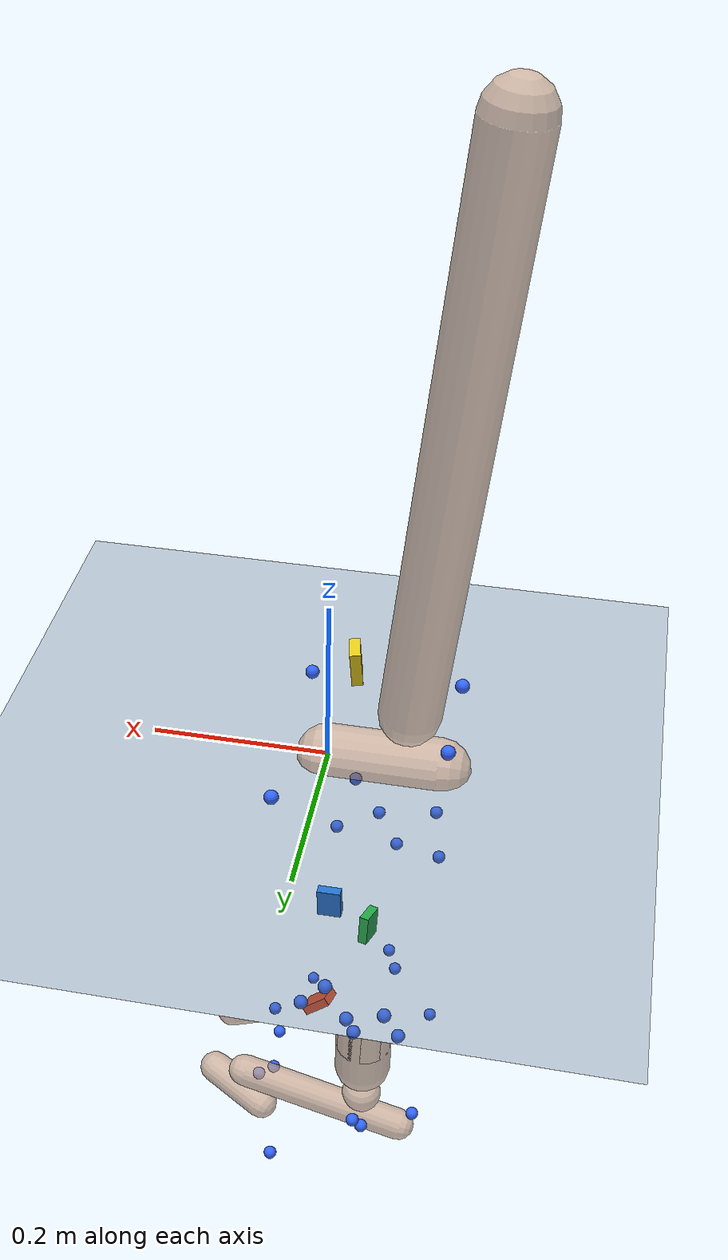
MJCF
<mujoco model="AB13">
  <compiler angle="radian" autolimits="true"/>
  <option timestep="0.005" gravity="0 0 -9.81"><flag contact="disable"/></option>
  <visual><global offwidth="1280" offheight="720"/></visual>
  <default><joint limited="false" damping="0"/><geom contype="0" conaffinity="0"/></default>
  <asset>
    <texture name="grid" type="2d" builtin="checker" rgb1="0.2 0.3 0.4" rgb2="0.3 0.4 0.5" width="512" height="512"/>
    <material name="grid" texture="grid" texrepeat="2 2" texuniform="true"/>
    <material name="skin" rgba="0.8 0.65 0.55 0.7"/>
  </asset>
  <worldbody>
    <light pos="0 0 4" dir="0 0 -1"/>
    <geom name="floor" type="plane" size="0 0 0.05" material="grid"/>
    <body name="pelvis" pos="0 0 0" quat="1 0 0 0">
      <joint name="pelvis_tx" type="slide" axis="1 0 0"/>
      <joint name="pelvis_ty" type="slide" axis="0 0 1"/>
      <joint name="pelvis_tz" type="slide" axis="0 -1 0"/>
      <joint name="pelvis_tilt" type="hinge" axis="0 -1 0"/>
      <joint name="pelvis_list" type="hinge" axis="1 0 0"/>
      <joint name="pelvis_rotation" type="hinge" axis="0 0 1"/>
      <inertial pos="-0.063103539 0 0" mass="8.94477" diaginertia="0.089447731 0.089447731 0.089447731"/>
      <geom type="capsule" fromto="0 0 0 -0.12620708 0 0" size="0.035" material="skin" mass="0"/>
      <site name="m_R_ASIS" pos="0.039352772 -0.1105126 0.024330353" size="0.008" rgba="0.2 0.4 1 1" group="2"/>
      <site name="m_L_ASIS" pos="0.039034642 0.11411929 0.031244651" size="0.008" rgba="0.2 0.4 1 1" group="2"/>
      <site name="m_L_PSIS" pos="-0.13862256 0.05601487 0.07470009" size="0.008" rgba="0.2 0.4 1 1" group="2"/>
      <site name="m_R_PSIS" pos="-0.1399088 -0.054829012 0.075996452" size="0.008" rgba="0.2 0.4 1 1" group="2"/>
      <body name="femur_r" pos="-0.063103539 -0.074528224 -0.058997792" quat="1 0 0 0">
        <joint name="hip_flexion_r" type="hinge" axis="0 -1 0"/>
        <joint name="hip_adduction_r" type="hinge" axis="1 0 0"/>
        <joint name="hip_rotation_r" type="hinge" axis="0 0 1"/>
        <inertial pos="0 0 -0.17254222" mass="7.06453" diaginertia="0.070645251 0.070645251 0.070645251"/>
        <geom type="capsule" fromto="0 0 0 0 0 -0.34508443" size="0.035" material="skin" mass="0"/>
        <site name="m_R_Thigh_Upper" pos="0.056050089 -0.087431832 -0.12410132" size="0.008" rgba="0.2 0.4 1 1" group="2"/>
        <site name="m_R_Thigh_Front" pos="0.075307148 -0.064751227 -0.19057419" size="0.008" rgba="0.2 0.4 1 1" group="2"/>
        <site name="m_R_Thigh_Rear" pos="0.02474407 -0.092379118 -0.18217937" size="0.008" rgba="0.2 0.4 1 1" group="2"/>
        <site name="m_R_Knee_Lat" pos="0.000352359 -0.074967183 -0.42578159" size="0.008" rgba="0.2 0.4 1 1" group="2"/>
        <site name="imu_thigh" type="box" size="0.02 0.015 0.006" pos="0.066880103 0.027863896 -0.23243883" quat="0.51276176 0.50686498 -0.50157076 0.47811091" rgba="0.1 0.5 1 1" group="1"/>
        <body name="tibia_r" pos="0 0 0" quat="1 0 0 0">
          <joint name="knee_r_translation1" type="slide" axis="1 0 0"/>
          <joint name="knee_r_translation2" type="slide" axis="0 0 1"/>
          <joint name="knee_angle_r" type="hinge" axis="0 -1 0"/>
          <inertial pos="0 0 -0.1952618" mass="2.81589" diaginertia="0.028158908 0.028158908 0.028158908"/>
          <geom type="capsule" fromto="0 0 0 0 0 -0.39052359" size="0.035" material="skin" mass="0"/>
          <site name="m_R_Shank_Upper" pos="-0.049004611 -0.093072431 -0.16876278" size="0.008" rgba="0.2 0.4 1 1" group="2"/>
          <site name="m_R_Shank_Front" pos="-0.00089466071 -0.084805157 -0.22680498" size="0.008" rgba="0.2 0.4 1 1" group="2"/>
          <site name="m_R_Shank_Rear" pos="-0.058529922 -0.070479426 -0.22546314" size="0.008" rgba="0.2 0.4 1 1" group="2"/>
          <site name="m_R_Ankle_Lat" pos="-0.011698413 -0.052401136 -0.43580038" size="0.008" rgba="0.2 0.4 1 1" group="2"/>
          <site name="imu_shank" type="box" size="0.02 0.015 0.006" pos="0.020114992 0.004899536 -0.29101144" quat="0.6954382 0.16129906 0.69910836 -0.039947704" rgba="0.1 0.8 0.2 1" group="1"/>
          <body name="talus_r" pos="0 0 -0.44971919" quat="1 0 0 0">
            <joint name="ankle_angle_r" type="hinge" axis="-0.10501355 -0.97912632 -0.17402245"/>
            <inertial pos="0 0 0" mass="0.0759512" diaginertia="0.00075951202 0.00075951202 0.00075951202"/>
            <geom type="sphere" size="0.025" material="skin" mass="0"/>
            <body name="calcn_r" pos="-0.051006523 -0.0082832 -0.043873767" quat="1 0 0 0">
              <joint name="subtalar_angle_r" type="hinge" axis="0.78717961 0.12094949 0.60474746"/>
              <inertial pos="0.10182156 0 0.030546467" mass="0.94939" diaginertia="0.0094939003 0.0094939003 0.0094939003"/>
              <geom type="capsule" fromto="0 0 0 0.20364312 0 0.061092935" size="0.02" material="skin" mass="0"/>
              <site name="m_R_Heel" pos="-0.017076583 0.0017945102 0.028101511" size="0.008" rgba="0.2 0.4 1 1" group="2"/>
              <site name="m_R_Toe_Lat" pos="0.15747793 -0.062856129 -0.011647716" size="0.008" rgba="0.2 0.4 1 1" group="2"/>
              <site name="m_R_Toe_Med" pos="0.18189576 0.052573952 0.0043415588" size="0.008" rgba="0.2 0.4 1 1" group="2"/>
              <site name="m_R_Toe_Tip" pos="0.19326144 0.028310197 0.021770381" size="0.008" rgba="0.2 0.4 1 1" group="2"/>
              <site name="imu_foot" type="box" size="0.02 0.015 0.006" pos="0.13573696 0.0063277246 0.02543629" quat="0.92752423 0.14798335 0.34130744 -0.036179522" rgba="1 0.3 0.1 1" group="1"/>
              <body name="toes_r" pos="0.18205695 -0.0010996728 -0.0020364312" quat="1 0 0 0">
                <joint name="mtp_angle_r" type="hinge" axis="-0.5809544 -0.81393611 0"/>
                <inertial pos="0.035230259 0.017818773 0.0061092935" mass="0.16451" diaginertia="0.001645103 0.001645103 0.001645103"/>
                <geom type="capsule" fromto="0 0 0 0.070460518 0.035637545 0.012218587" size="0.02" material="skin" mass="0"/>
              </body>
            </body>
          </body>
        </body>
      </body>
      <body name="femur_l" pos="-0.063103539 0.074528224 -0.058997792" quat="1 0 0 0">
        <joint name="hip_flexion_l" type="hinge" axis="0 -1 0"/>
        <joint name="hip_adduction_l" type="hinge" axis="-1 0 0"/>
        <joint name="hip_rotation_l" type="hinge" axis="0 0 -1"/>
        <inertial pos="0 0 -0.17254222" mass="7.06453" diaginertia="0.070645251 0.070645251 0.070645251"/>
        <geom type="capsule" fromto="0 0 0 0 0 -0.34508443" size="0.035" material="skin" mass="0"/>
        <site name="m_L_Thigh_Upper" pos="0.031527582 0.097124482 -0.13334903" size="0.008" rgba="0.2 0.4 1 1" group="2"/>
        <site name="m_L_Thigh_Front" pos="0.063508 0.076154799 -0.19309016" size="0.008" rgba="0.2 0.4 1 1" group="2"/>
        <site name="m_L_Thigh_Rear" pos="0.0073502552 0.092837141 -0.18935716" size="0.008" rgba="0.2 0.4 1 1" group="2"/>
        <site name="m_L_Knee_Lat" pos="0.00094312557 0.064367779 -0.42075209" size="0.008" rgba="0.2 0.4 1 1" group="2"/>
        <body name="tibia_l" pos="0 0 0" quat="1 0 0 0">
          <joint name="knee_l_translation1" type="slide" axis="1 0 0"/>
          <joint name="knee_l_translation2" type="slide" axis="0 0 1"/>
          <joint name="knee_angle_l" type="hinge" axis="0 -1 0"/>
          <inertial pos="0 0 -0.1952618" mass="2.81589" diaginertia="0.028158908 0.028158908 0.028158908"/>
          <geom type="capsule" fromto="0 0 0 0 0 -0.39052359" size="0.035" material="skin" mass="0"/>
          <site name="m_L_Shank_Upper" pos="-0.035413185 0.089590862 -0.17702488" size="0.008" rgba="0.2 0.4 1 1" group="2"/>
          <site name="m_L_Shank_Front" pos="0.0010802266 0.076687175 -0.2317599" size="0.008" rgba="0.2 0.4 1 1" group="2"/>
          <site name="m_L_Shank_Rear" pos="-0.050949324 0.073882888 -0.22950162" size="0.008" rgba="0.2 0.4 1 1" group="2"/>
          <site name="m_L_Ankle_Lat" pos="-0.0085602449 0.054162286 -0.44458636" size="0.008" rgba="0.2 0.4 1 1" group="2"/>
          <body name="talus_l" pos="0 0 -0.44971919" quat="1 0 0 0">
            <joint name="ankle_angle_l" type="hinge" axis="0.10501355 -0.97912632 0.17402245"/>
            <inertial pos="0 0 0" mass="0.0759512" diaginertia="0.00075951202 0.00075951202 0.00075951202"/>
            <geom type="sphere" size="0.025" material="skin" mass="0"/>
            <body name="calcn_l" pos="-0.051006523 0.0082832 -0.043873767" quat="1 0 0 0">
              <joint name="subtalar_angle_l" type="hinge" axis="-0.78717961 0.12094949 -0.60474746"/>
              <inertial pos="0.10182156 0 0.030546467" mass="0.94939" diaginertia="0.0094939003 0.0094939003 0.0094939003"/>
              <geom type="capsule" fromto="0 0 0 0.20364312 0 0.061092935" size="0.02" material="skin" mass="0"/>
              <site name="m_L_Heel" pos="-0.016807259 0.00037823316 0.028332843" size="0.008" rgba="0.2 0.4 1 1" group="2"/>
              <site name="m_L_Toe_Lat" pos="0.15641348 0.065060251 -0.015121034" size="0.008" rgba="0.2 0.4 1 1" group="2"/>
              <site name="m_L_Toe_Med" pos="0.1770321 -0.052869215 0.0063685676" size="0.008" rgba="0.2 0.4 1 1" group="2"/>
              <site name="m_L_Toe_Tip" pos="0.19117915 -0.026866516 0.022216184" size="0.008" rgba="0.2 0.4 1 1" group="2"/>
              <body name="toes_l" pos="0.18205695 0.0010996728 -0.0020364312" quat="1 0 0 0">
                <joint name="mtp_angle_l" type="hinge" axis="0.5809544 -0.81393611 0"/>
                <inertial pos="0.035230259 -0.017818773 0.0061092935" mass="0.16451" diaginertia="0.001645103 0.001645103 0.001645103"/>
                <geom type="capsule" fromto="0 0 0 0.070460518 -0.035637545 0.012218587" size="0.02" material="skin" mass="0"/>
              </body>
            </body>
          </body>
        </body>
      </body>
      <body name="torso" pos="-0.089880146 0 0.072743117" quat="1 0 0 0">
        <joint name="lumbar_extension" type="hinge" axis="0 -1 0"/>
        <joint name="lumbar_bending" type="hinge" axis="1 0 0"/>
        <joint name="lumbar_rotation" type="hinge" axis="0 0 1"/>
        <inertial pos="-0.030036744 0 0.32039194" mass="26.0031" diaginertia="0.26003109 0.26003109 0.26003109"/>
        <geom type="capsule" fromto="0 0 0 -0.060073489 0 0.64078388" size="0.035" material="skin" mass="0"/>
        <site name="imu_trunk" type="box" size="0.02 0.015 0.006" pos="0.060410976 0.00087664889 0.063143472" quat="0.67257628 -0.072794828 0.73354697 0.065198941" rgba="0.9 0.8 0.1 1" group="1"/>
      </body>
    </body>
  </worldbody>
  <sensor>
<accelerometer name="imu_foot_acc" site="imu_foot"/>
<gyro name="imu_foot_gyr" site="imu_foot"/>
<accelerometer name="imu_shank_acc" site="imu_shank"/>
<gyro name="imu_shank_gyr" site="imu_shank"/>
<accelerometer name="imu_thigh_acc" site="imu_thigh"/>
<gyro name="imu_thigh_gyr" site="imu_thigh"/>
<accelerometer name="imu_trunk_acc" site="imu_trunk"/>
<gyro name="imu_trunk_gyr" site="imu_trunk"/>
</sensor>
</mujoco>
